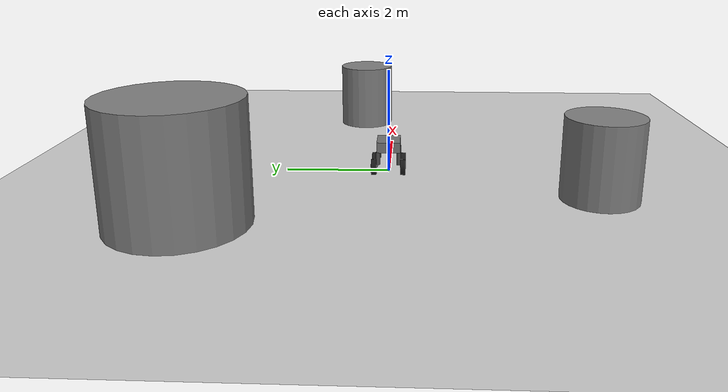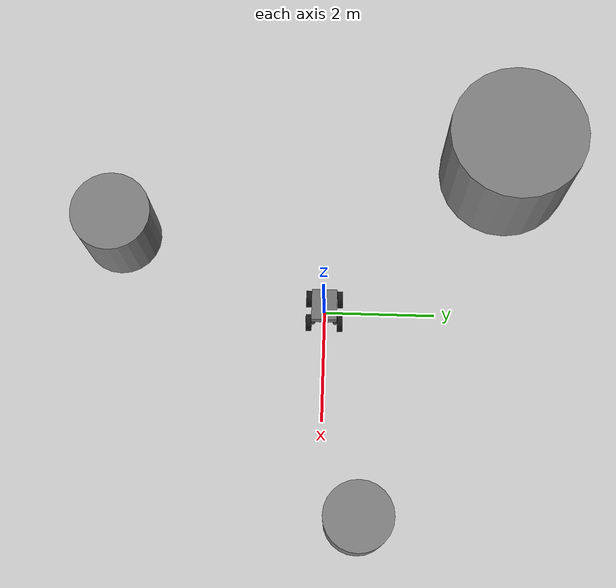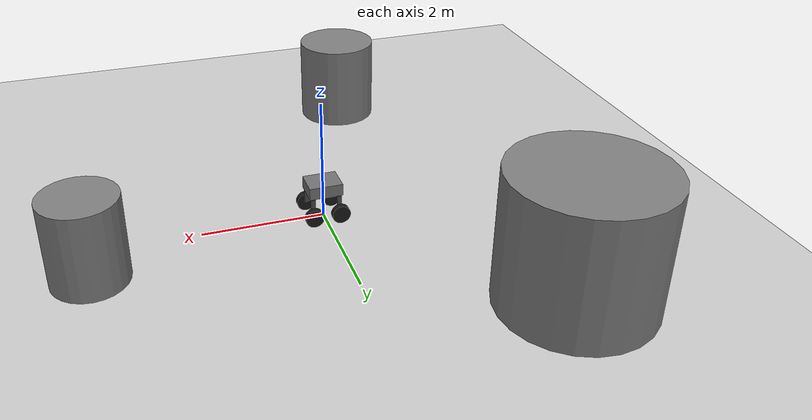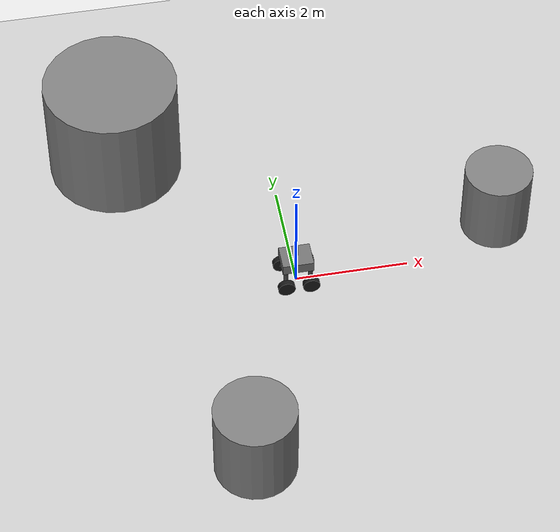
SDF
<?xml version="1.0" ?>
<sdf version="1.9">
  <world name="obstacle_world">

    <!-- small step size so the physics is more accurate, real time factor
         1.0 means it runs at normal speed (not sped up/slowed down) -->
    <physics name="1ms" type="ignored">
      <max_step_size>0.001</max_step_size>
      <real_time_factor>1.0</real_time_factor>
    </physics>

    <!-- these are just the standard plugins you need for basically any
         gazebo world to work right (physics, gui stuff, rendering) -->
    <plugin filename="gz-sim-physics-system" name="gz::sim::systems::Physics"></plugin>
    <plugin filename="gz-sim-user-commands-system" name="gz::sim::systems::UserCommands"></plugin>
    <plugin filename="gz-sim-scene-broadcaster-system" name="gz::sim::systems::SceneBroadcaster"></plugin>
    <plugin filename="gz-sim-sensors-system" name="gz::sim::systems::Sensors">
      <render_engine>ogre2</render_engine>
    </plugin>

    <!-- just a light so we can actually see stuff -->
    <light type="directional" name="sun">
      <cast_shadows>true</cast_shadows>
      <pose>0 0 10 0 0 0</pose>
      <diffuse>0.8 0.8 0.8 1</diffuse>
      <specular>0.2 0.2 0.2 1</specular>
      <direction>-0.5 0.1 -0.9</direction>
    </light>

    <!-- flat ground, 40x40 so theres plenty of room -->
    <model name="ground_plane">
      <static>true</static>
      <link name="link">
        <collision name="collision">
          <geometry><plane><normal>0 0 1</normal><size>40 40</size></plane></geometry>
        </collision>
        <visual name="visual">
          <geometry><plane><normal>0 0 1</normal><size>40 40</size></plane></geometry>
          <material><ambient>0.8 0.8 0.8 1</ambient><diffuse>0.8 0.8 0.8 1</diffuse></material>
        </visual>
      </link>
    </model>

    <model name="stone_1"><static>true</static><link name="link">
      <collision name="collision"><pose>3.74 0.66 0.7 0 0 0</pose><geometry><cylinder><radius>0.6</radius><length>1.4</length></cylinder></geometry></collision>
      <visual name="visual"><pose>3.74 0.66 0.7 0 0 0</pose><geometry><cylinder><radius>0.6</radius><length>1.4</length></cylinder></geometry><material><ambient>0.5 0.5 0.5 1</ambient><diffuse>0.5 0.5 0.5 1</diffuse></material></visual>
    </link></model>

    <model name="stone_3"><static>true</static><link name="link">
      <collision name="collision"><pose>-2.76 3.29 1.05 0 0 0</pose><geometry><cylinder><radius>1.2</radius><length>2.1</length></cylinder></geometry></collision>
      <visual name="visual"><pose>-2.76 3.29 1.05 0 0 0</pose><geometry><cylinder><radius>1.2</radius><length>2.1</length></cylinder></geometry><material><ambient>0.5 0.5 0.5 1</ambient><diffuse>0.5 0.5 0.5 1</diffuse></material></visual>
    </link></model>

    <model name="stone_5"><static>true</static><link name="link">
      <collision name="collision"><pose>-1.37 -3.76 0.75 0 0 0</pose><geometry><cylinder><radius>0.7</radius><length>1.5</length></cylinder></geometry></collision>
      <visual name="visual"><pose>-1.37 -3.76 0.75 0 0 0</pose><geometry><cylinder><radius>0.7</radius><length>1.5</length></cylinder></geometry><material><ambient>0.5 0.5 0.5 1</ambient><diffuse>0.5 0.5 0.5 1</diffuse></material></visual>
    </link></model>

    <model name="waypoint_bot">
      <pose>0 0 0 0 0 0</pose>
      <self_collide>false</self_collide>

      <link name="chassis">
        <gravity>false</gravity>
        <inertial>
          <mass>8.0</mass>
          <inertia>
            <ixx>0.3</ixx><iyy>0.5</iyy><izz>0.6</izz>
            <ixy>0</ixy><ixz>0</ixz><iyz>0</iyz>
          </inertia>
        </inertial>

        <!-- this box is the actual physical body, everything else below
             is just visual -->
        <collision name="collision">
          <pose>0 0 0.35 0 0 0</pose>
          <geometry><box><size>0.7 0.6 0.7</size></box></geometry>
        </collision>

        <visual name="body">
          <pose>0 0 0.55 0 0 0</pose>
          <geometry><box><size>0.55 0.45 0.2</size></box></geometry>
          <material><ambient>0.45 0.45 0.45 1</ambient><diffuse>0.45 0.45 0.45 1</diffuse></material>
        </visual>

        <!-- 4 little legs holding the body up, just for looks -->
        <visual name="leg_fl">
          <pose>0.22 0.2 0.325 0 0 0</pose>
          <geometry><cylinder><radius>0.04</radius><length>0.25</length></cylinder></geometry>
          <material><ambient>0.3 0.3 0.3 1</ambient><diffuse>0.3 0.3 0.3 1</diffuse></material>
        </visual>
        <visual name="leg_fr">
          <pose>0.22 -0.2 0.325 0 0 0</pose>
          <geometry><cylinder><radius>0.04</radius><length>0.25</length></cylinder></geometry>
          <material><ambient>0.3 0.3 0.3 1</ambient><diffuse>0.3 0.3 0.3 1</diffuse></material>
        </visual>
        <visual name="leg_bl">
          <pose>-0.22 0.2 0.325 0 0 0</pose>
          <geometry><cylinder><radius>0.04</radius><length>0.25</length></cylinder></geometry>
          <material><ambient>0.3 0.3 0.3 1</ambient><diffuse>0.3 0.3 0.3 1</diffuse></material>
        </visual>
        <visual name="leg_br">
          <pose>-0.22 -0.2 0.325 0 0 0</pose>
          <geometry><cylinder><radius>0.04</radius><length>0.25</length></cylinder></geometry>
          <material><ambient>0.3 0.3 0.3 1</ambient><diffuse>0.3 0.3 0.3 1</diffuse></material>
        </visual>

        <!-- all 4 wheels, black, just cylinders rotated sideways. these
             DONT spin or turn, purely decorative -->
        <visual name="wheel_bl">
          <pose>-0.22 0.28 0.15 1.5708 0 0</pose>
          <geometry><cylinder><radius>0.15</radius><length>0.1</length></cylinder></geometry>
          <material><ambient>0.1 0.1 0.1 1</ambient><diffuse>0.1 0.1 0.1 1</diffuse></material>
        </visual>
        <visual name="wheel_br">
          <pose>-0.22 -0.28 0.15 1.5708 0 0</pose>
          <geometry><cylinder><radius>0.15</radius><length>0.1</length></cylinder></geometry>
          <material><ambient>0.1 0.1 0.1 1</ambient><diffuse>0.1 0.1 0.1 1</diffuse></material>
        </visual>
        <visual name="wheel_fl">
          <pose>0.22 0.28 0.15 1.5708 0 0</pose>
          <geometry><cylinder><radius>0.15</radius><length>0.1</length></cylinder></geometry>
          <material><ambient>0.1 0.1 0.1 1</ambient><diffuse>0.1 0.1 0.1 1</diffuse></material>
        </visual>
        <visual name="wheel_fr">
          <pose>0.22 -0.28 0.15 1.5708 0 0</pose>
          <geometry><cylinder><radius>0.15</radius><length>0.1</length></cylinder></geometry>
          <material><ambient>0.1 0.1 0.1 1</ambient><diffuse>0.1 0.1 0.1 1</diffuse></material>
        </visual>

        <visual name="lidar_mast">
          <pose>0 0 0.775 0 0 0</pose>
          <geometry><cylinder><radius>0.03</radius><length>0.25</length></cylinder></geometry>
          <material><ambient>0.2 0.2 0.2 1</ambient><diffuse>0.2 0.2 0.2 1</diffuse></material>
        </visual>

        <!-- the actual lidar sensor. 360 samples means it can see all the
             way around (360 degrees), range is 0.1 to 10 meters -->
        <sensor name="lidar" type="gpu_lidar">
          <pose>0 0 0.9 0 0 0</pose>
          <topic>lidar</topic>
          <update_rate>10</update_rate>
          <always_on>true</always_on>
          <visualize>true</visualize>
          <lidar>
            <scan>
              <horizontal>
                <samples>360</samples>
                <resolution>1</resolution>
                <min_angle>-3.14159</min_angle>
                <max_angle>3.14159</max_angle>
              </horizontal>
            </scan>
            <range>
              <min>0.1</min>
              <max>10.0</max>
              <resolution>0.01</resolution>
            </range>
          </lidar>
        </sensor>
      </link>

      <plugin filename="gz-sim-velocity-control-system" name="gz::sim::systems::VelocityControl">
        <topic>/model/waypoint_bot/cmd_vel</topic>
      </plugin>

      <!-- publishes the robots position/orientation so our python code
           knows where it is (basically acts like perfect gps + compass,
           which obviously wouldnt exist on a real rover) -->
      <plugin filename="gz-sim-odometry-publisher-system" name="gz::sim::systems::OdometryPublisher">
        <odom_frame>odom</odom_frame>
        <robot_base_frame>waypoint_bot</robot_base_frame>
        <odom_publish_frequency>20</odom_publish_frequency>
        <odom_topic>/model/waypoint_bot/odometry</odom_topic>
      </plugin>
    </model>

  </world>
</sdf>
